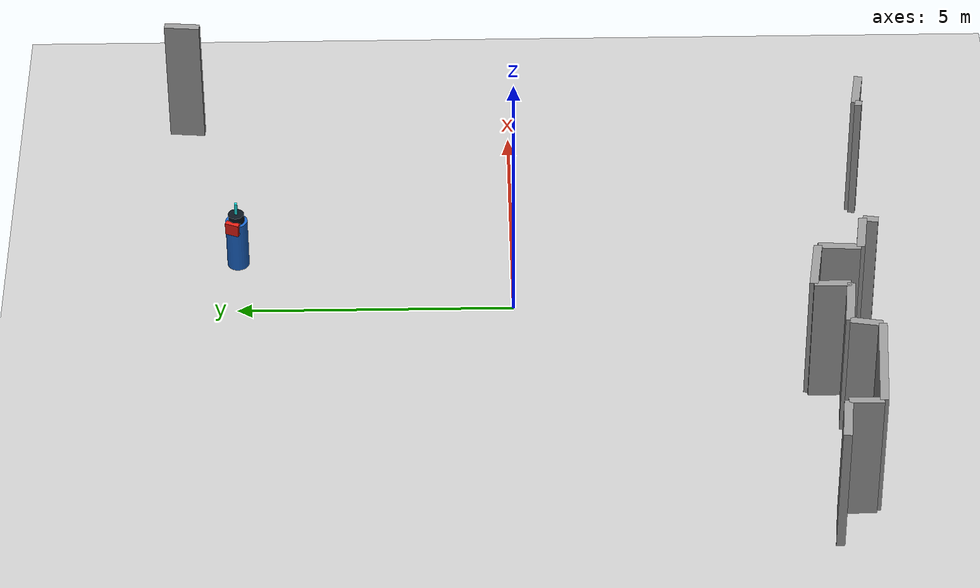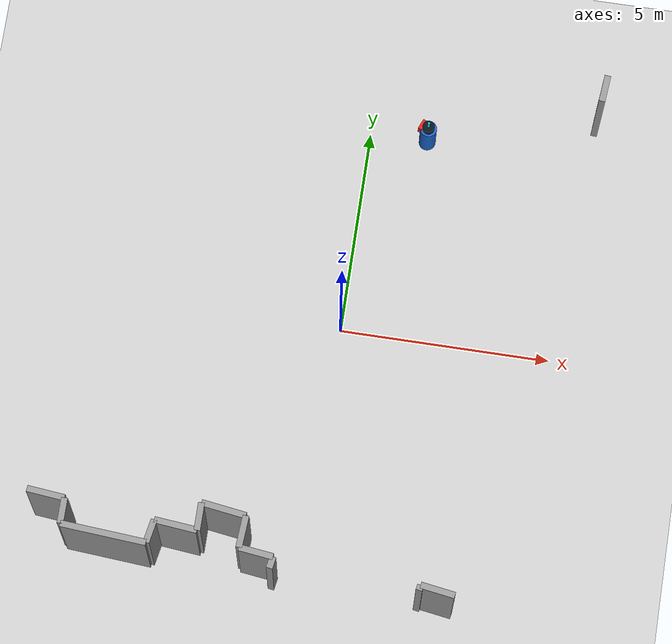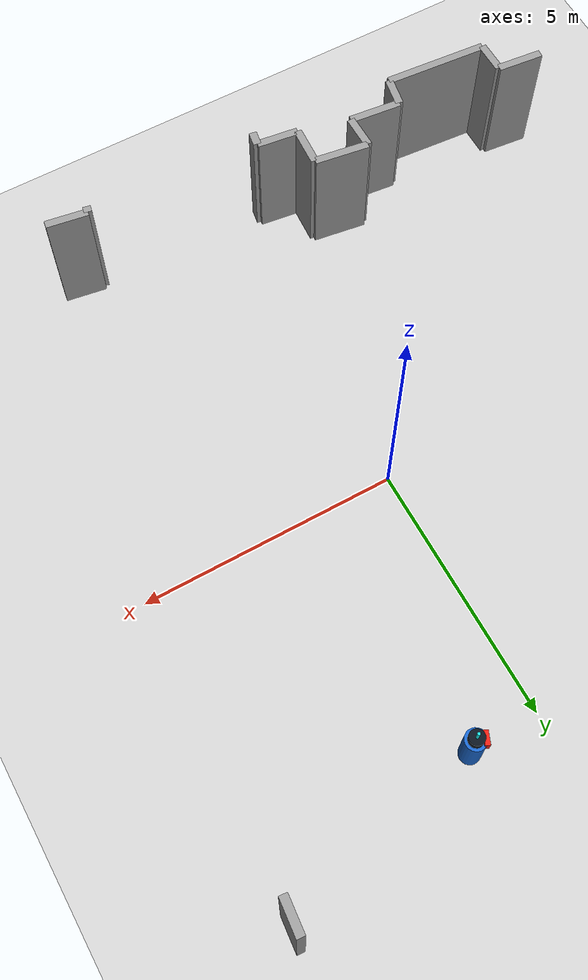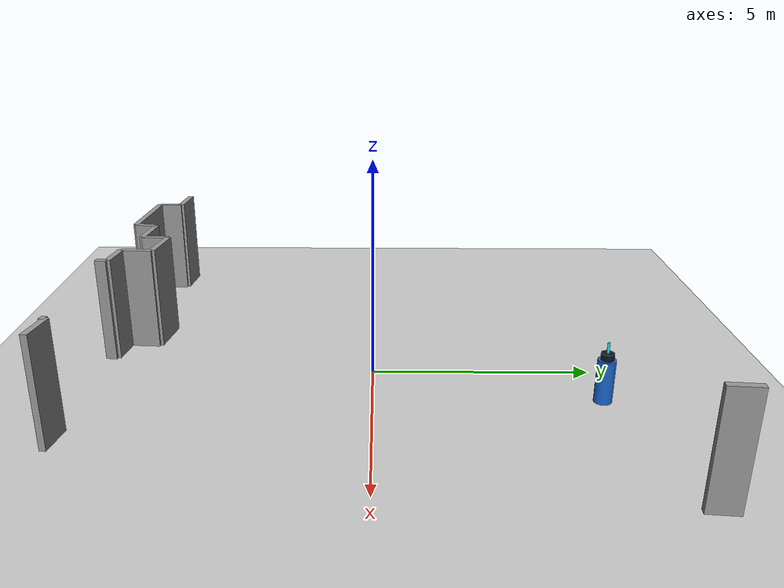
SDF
<sdf version="1.7">
 <world name="default">
  <plugin name="socnav_plugin" filename="libSocNavPlugin.so">
   <robot_name>robot</robot_name>
   <trajectory_file>/home/hunav_gz_classic_ws/SocNav3_trajectories/src3/000001132.json</trajectory_file>
   <human_slots>2</human_slots>
  </plugin>
  <light name="sun" type="directional">
   <pose>0 0 10 0 -0 0</pose>
   <diffuse>0.8 0.8 0.8 1</diffuse>
   <specular>0.2 0.2 0.2 1</specular>
   <attenuation>
    <range>1000</range>
    <constant>0.9</constant>
    <linear>0.01</linear>
    <quadratic>0.001</quadratic>
   </attenuation>
   <direction>-0.5 0.1 -0.9</direction>
   <spot><inner_angle>0</inner_angle><outer_angle>0</outer_angle><falloff>0</falloff></spot>
  </light>
  <model name="ground_plane">
   <static>1</static>
   <link name="link">
    <collision name="collision">
     <geometry><plane><normal>0 0 1</normal><size>100 100</size></plane></geometry>
     <surface><friction><ode><mu>100</mu><mu2>50</mu2></ode></friction></surface>
    </collision>
    <visual name="visual">
     <cast_shadows>0</cast_shadows>
     <geometry><plane><normal>0 0 1</normal><size>100 100</size></plane></geometry>
     <material>
      <script><uri>file://media/materials/scripts/kitchen.material</uri><name>Kitchen/CounterTop_H</name></script>
     </material>
    </visual>
   </link>
  </model>
  <gravity>0 0 -9.8</gravity>
  <magnetic_field>6e-06 2.3e-05 -4.2e-05</magnetic_field>
  <atmosphere type="adiabatic"/>
  <physics type="ode">
   <max_step_size>0.001</max_step_size>
   <real_time_factor>1</real_time_factor>
   <real_time_update_rate>1000</real_time_update_rate>
  </physics>
  <scene><ambient>0.4 0.4 0.4 1</ambient><background>0.7 0.7 0.7 1</background><shadows>1</shadows></scene>
  <audio><device>default</device></audio>
  <spherical_coordinates>
   <surface_model>EARTH_WGS84</surface_model>
   <latitude_deg>0</latitude_deg>
   <longitude_deg>0</longitude_deg>
   <elevation>0</elevation>
   <heading_deg>0</heading_deg>
  </spherical_coordinates>
  <model name="robot">
   <pose>1.3759031225531508 5.024820206330125 0.5 0 0 2.7432795375866417</pose>
   <link name="link">
    <collision name="collision">
     <geometry><cylinder><radius>0.2</radius><length>1.0</length></cylinder></geometry>
    </collision>
    <visual name="visual">
     <geometry><cylinder><radius>0.2</radius><length>1.0</length></cylinder></geometry>
     <material><ambient>0.1 0.4 0.8 1</ambient><diffuse>0.1 0.4 0.8 1</diffuse></material>
    </visual>
    <visual name="robot_top">
     <pose>0 0 0.58 0 0 0</pose>
     <geometry><cylinder><radius>0.144</radius><length>0.16</length></cylinder></geometry>
     <material><ambient>0.04 0.08 0.12 1</ambient><diffuse>0.04 0.08 0.12 1</diffuse></material>
    </visual>
    <visual name="robot_front">
     <pose>0.168 0 0.44 0 0 0</pose>
     <geometry><box><size>0.096 0.256 0.24</size></box></geometry>
     <material><ambient>0.9 0.12 0.08 1</ambient><diffuse>0.9 0.12 0.08 1</diffuse></material>
    </visual>
    <visual name="robot_sensor">
     <pose>0 0 0.78 0 0 0</pose>
     <geometry><cylinder><radius>0.028000000000000004</radius><length>0.24</length></cylinder></geometry>
     <material><ambient>0.1 0.9 0.9 1</ambient><diffuse>0.1 0.9 0.9 1</diffuse></material>
    </visual>
   </link>
  </model>
  <model name="simple_world_test">
   <link name="Wall_0">
    <collision name="Wall_0_Collision">
     <geometry><box><size>0.8899451382719887 0.15 2.5</size></box></geometry>
     <pose>0 0 1.25 0 -0 0</pose>
    </collision>
    <visual name="Wall_0_Visual">
     <pose>0 0 1.25 0 -0 0</pose>
     <geometry><box><size>0.8899451382719887 0.15 2.5</size></box></geometry>
     <material>
      <script><uri>file://media/materials/scripts/gazebo.material</uri><name>Gazebo/Grey</name></script>
      <ambient>1 1 1 1</ambient>
     </material>
     <meta><layer>0</layer></meta>
    </visual>
    <pose>-5.994574353093213 -5.470156350657941 0 0 -0 -0.09966865249116183</pose>
   </link>
   <link name="Wall_1">
    <collision name="Wall_1_Collision">
     <geometry><box><size>0.6000000000000005 0.15 2.5</size></box></geometry>
     <pose>0 0 1.25 0 -0 0</pose>
    </collision>
    <visual name="Wall_1_Visual">
     <pose>0 0 1.25 0 -0 0</pose>
     <geometry><box><size>0.6000000000000005 0.15 2.5</size></box></geometry>
     <material>
      <script><uri>file://media/materials/scripts/gazebo.material</uri><name>Gazebo/Grey</name></script>
      <ambient>1 1 1 1</ambient>
     </material>
     <meta><layer>0</layer></meta>
    </visual>
    <pose>-5.5518100981796135 -5.814432776149301 0 0 -0 -1.5707963267948966</pose>
   </link>
   <link name="Wall_2">
    <collision name="Wall_2_Collision">
     <geometry><box><size>2.0056171120131574 0.15 2.5</size></box></geometry>
     <pose>0 0 1.25 0 -0 0</pose>
    </collision>
    <visual name="Wall_2_Visual">
     <pose>0 0 1.25 0 -0 0</pose>
     <geometry><box><size>2.0056171120131574 0.15 2.5</size></box></geometry>
     <material>
      <script><uri>file://media/materials/scripts/gazebo.material</uri><name>Gazebo/Grey</name></script>
      <ambient>1 1 1 1</ambient>
     </material>
     <meta><layer>0</layer></meta>
    </visual>
    <pose>-4.5518100981796135 -6.189432776149301 0 0 -0 -0.07485984771076662</pose>
   </link>
   <link name="Wall_3">
    <collision name="Wall_3_Collision">
     <geometry><box><size>0.5590169943749472 0.15 2.5</size></box></geometry>
     <pose>0 0 1.25 0 -0 0</pose>
    </collision>
    <visual name="Wall_3_Visual">
     <pose>0 0 1.25 0 -0 0</pose>
     <geometry><box><size>0.5590169943749472 0.15 2.5</size></box></geometry>
     <material>
      <script><uri>file://media/materials/scripts/gazebo.material</uri><name>Gazebo/Grey</name></script>
      <ambient>1 1 1 1</ambient>
     </material>
     <meta><layer>0</layer></meta>
    </visual>
    <pose>-3.501810098179614 -5.989432776149302 0 0 -0 1.390942827002419</pose>
   </link>
   <link name="Wall_4">
    <collision name="Wall_4_Collision">
     <geometry><box><size>1.004987562112089 0.15 2.5</size></box></geometry>
     <pose>0 0 1.25 0 -0 0</pose>
    </collision>
    <visual name="Wall_4_Visual">
     <pose>0 0 1.25 0 -0 0</pose>
     <geometry><box><size>1.004987562112089 0.15 2.5</size></box></geometry>
     <material>
      <script><uri>file://media/materials/scripts/gazebo.material</uri><name>Gazebo/Grey</name></script>
      <ambient>1 1 1 1</ambient>
     </material>
     <meta><layer>0</layer></meta>
    </visual>
    <pose>-2.9518100981796143 -5.7644327761493015 0 0 -0 -0.09966865249116168</pose>
   </link>
   <link name="Wall_5">
    <collision name="Wall_5_Collision">
     <geometry><box><size>0.6499999999999995 0.15 2.5</size></box></geometry>
     <pose>0 0 1.25 0 -0 0</pose>
    </collision>
    <visual name="Wall_5_Visual">
     <pose>0 0 1.25 0 -0 0</pose>
     <geometry><box><size>0.6499999999999995 0.15 2.5</size></box></geometry>
     <material>
      <script><uri>file://media/materials/scripts/gazebo.material</uri><name>Gazebo/Grey</name></script>
      <ambient>1 1 1 1</ambient>
     </material>
     <meta><layer>0</layer></meta>
    </visual>
    <pose>-2.4518100981796143 -5.489432776149302 0 0 -0 1.5707963267948966</pose>
   </link>
   <link name="Wall_6">
    <collision name="Wall_6_Collision">
     <geometry><box><size>1.0606601717798214 0.15 2.5</size></box></geometry>
     <pose>0 0 1.25 0 -0 0</pose>
    </collision>
    <visual name="Wall_6_Visual">
     <pose>0 0 1.25 0 -0 0</pose>
     <geometry><box><size>1.0606601717798214 0.15 2.5</size></box></geometry>
     <material>
      <script><uri>file://media/materials/scripts/gazebo.material</uri><name>Gazebo/Grey</name></script>
      <ambient>1 1 1 1</ambient>
     </material>
     <meta><layer>0</layer></meta>
    </visual>
    <pose>-1.9268100981796141 -5.239432776149302 0 0 -0 -0.14189705460416338</pose>
   </link>
   <link name="Wall_7">
    <collision name="Wall_7_Collision">
     <geometry><box><size>0.7516648189186454 0.15 2.5</size></box></geometry>
     <pose>0 0 1.25 0 -0 0</pose>
    </collision>
    <visual name="Wall_7_Visual">
     <pose>0 0 1.25 0 -0 0</pose>
     <geometry><box><size>0.7516648189186454 0.15 2.5</size></box></geometry>
     <material>
      <script><uri>file://media/materials/scripts/gazebo.material</uri><name>Gazebo/Grey</name></script>
      <ambient>1 1 1 1</ambient>
     </material>
     <meta><layer>0</layer></meta>
    </visual>
    <pose>-1.426810098179614 -5.689432776149301 0 0 -0 -1.6373644905707205</pose>
   </link>
   <link name="Wall_8">
    <collision name="Wall_8_Collision">
     <geometry><box><size>0.806225774829855 0.15 2.5</size></box></geometry>
     <pose>0 0 1.25 0 -0 0</pose>
    </collision>
    <visual name="Wall_8_Visual">
     <pose>0 0 1.25 0 -0 0</pose>
     <geometry><box><size>0.806225774829855 0.15 2.5</size></box></geometry>
     <material>
      <script><uri>file://media/materials/scripts/gazebo.material</uri><name>Gazebo/Grey</name></script>
      <ambient>1 1 1 1</ambient>
     </material>
     <meta><layer>0</layer></meta>
    </visual>
    <pose>-1.0518100981796141 -6.114432776149302 0 0 -0 -0.1243549945467621</pose>
   </link>
   <link name="Wall_9">
    <collision name="Wall_9_Collision">
     <geometry><box><size>0.27667022805378955 0.15 2.5</size></box></geometry>
     <pose>0 0 1.25 0 -0 0</pose>
    </collision>
    <visual name="Wall_9_Visual">
     <pose>0 0 1.25 0 -0 0</pose>
     <geometry><box><size>0.27667022805378955 0.15 2.5</size></box></geometry>
     <material>
      <script><uri>file://media/materials/scripts/gazebo.material</uri><name>Gazebo/Grey</name></script>
      <ambient>1 1 1 1</ambient>
     </material>
     <meta><layer>0</layer></meta>
    </visual>
    <pose>-0.6745522508344067 -6.300885692078058 0 0 -0 -1.7359450042095235</pose>
   </link>
   <link name="Wall_10">
    <collision name="Wall_10_Collision">
     <geometry><box><size>0.12533984699516149 0.15 2.5</size></box></geometry>
     <pose>0 0 1.25 0 -0 0</pose>
    </collision>
    <visual name="Wall_10_Visual">
     <pose>0 0 1.25 0 -0 0</pose>
     <geometry><box><size>0.12533984699516149 0.15 2.5</size></box></geometry>
     <material>
      <script><uri>file://media/materials/scripts/gazebo.material</uri><name>Gazebo/Grey</name></script>
      <ambient>1 1 1 1</ambient>
     </material>
     <meta><layer>0</layer></meta>
    </visual>
    <pose>2.735899318634635 -6.375885692078057 0 0 -0 1.3734007669450166</pose>
   </link>
   <link name="Wall_11">
    <collision name="Wall_11_Collision">
     <geometry><box><size>0.808286911667747 0.15 2.5</size></box></geometry>
     <pose>0 0 1.25 0 -0 0</pose>
    </collision>
    <visual name="Wall_11_Visual">
     <pose>0 0 1.25 0 -0 0</pose>
     <geometry><box><size>0.808286911667747 0.15 2.5</size></box></geometry>
     <material>
      <script><uri>file://media/materials/scripts/gazebo.material</uri><name>Gazebo/Grey</name></script>
      <ambient>1 1 1 1</ambient>
     </material>
     <meta><layer>0</layer></meta>
    </visual>
    <pose>3.1476338553572987 -6.375885692078057 0 0 -0 -0.15264932839526565</pose>
   </link>
   <link name="Wall_12">
    <collision name="Wall_12_Collision">
     <geometry><box><size>0.6544591126069215 0.15 2.5</size></box></geometry>
     <pose>0 0 1.25 0 -0 0</pose>
    </collision>
    <visual name="Wall_12_Visual">
     <pose>0 0 1.25 0 -0 0</pose>
     <geometry><box><size>0.6544591126069215 0.15 2.5</size></box></geometry>
     <material>
      <script><uri>file://media/materials/scripts/gazebo.material</uri><name>Gazebo/Grey</name></script>
      <ambient>1 1 1 1</ambient>
     </material>
     <meta><layer>0</layer></meta>
    </visual>
    <pose>5.3778158738274815 6.111452915928756 0 0 -0 -1.6614562139956424</pose>
   </link>
   <static>1</static>
  </model>
 </world>
</sdf>
